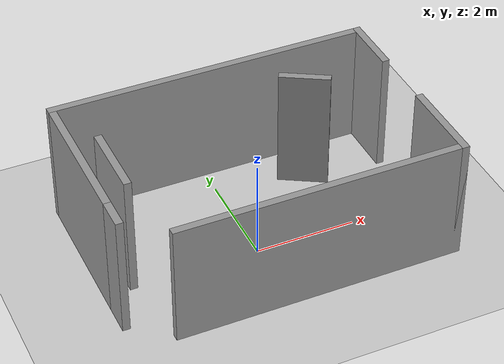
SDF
<sdf version="1.7">
 <world name="default">
  <light name="sun" type="directional">
   <pose>0 0 10 0 0 0</pose>
   <diffuse>0.8 0.8 0.8 1</diffuse>
   <specular>0.2 0.2 0.2 1</specular>
   <attenuation>
    <range>1000</range>
    <constant>0.9</constant>
    <linear>0.01</linear>
    <quadratic>0.001</quadratic>
   </attenuation>
   <direction>-0.5 0.1 -0.9</direction>
   <spot><inner_angle>0</inner_angle><outer_angle>0</outer_angle><falloff>0</falloff></spot>
  </light>
  <model name="ground_plane">
   <static>1</static>
   <link name="link">
    <collision name="collision">
     <geometry><plane><normal>0 0 1</normal><size>100 100</size></plane></geometry>
     <surface>
      <contact><collide_bitmask>65535</collide_bitmask></contact>
      <friction><ode><mu>100</mu><mu2>50</mu2></ode></friction>
     </surface>
    </collision>
    <visual name="visual">
     <cast_shadows>0</cast_shadows>
     <geometry><plane><normal>0 0 1</normal><size>100 100</size></plane></geometry>
     <material>
      <ambient>0.8 0.8 0.8 1</ambient>
      <diffuse>0.8 0.8 0.8 1</diffuse>
      <specular>0.8 0.8 0.8 1</specular>
     </material>
    </visual>
   </link>
  </model>
  <gravity>0 0 -9.8</gravity>
  <magnetic_field>6e-06 2.3e-05 -4.2e-05</magnetic_field>
  <atmosphere type="adiabatic"/>
  <physics type="ode">
   <max_step_size>0.001</max_step_size>
   <real_time_factor>1</real_time_factor>
   <real_time_update_rate>1000</real_time_update_rate>
  </physics>
  <scene><ambient>0.4 0.4 0.4 1</ambient><background>0.7 0.7 0.7 1</background><shadows>1</shadows></scene>
  <audio><device>default</device></audio>
  <spherical_coordinates>
   <surface_model>EARTH_WGS84</surface_model>
   <latitude_deg>0</latitude_deg>
   <longitude_deg>0</longitude_deg>
   <elevation>0</elevation>
   <heading_deg>0</heading_deg>
  </spherical_coordinates>
  <model name="sample">
   <pose>0.195 0.545 0 0 -0 0</pose>
   <link name="Wall_10">
    <collision name="Wall_10_Collision">
     <geometry><box><size>6.5 0.15 2.5</size></box></geometry>
     <pose>0 0 1.25 0 -0 0</pose>
    </collision>
    <visual name="Wall_10_Visual">
     <pose>0 0 1.25 0 -0 0</pose>
     <geometry><box><size>6.5 0.15 2.5</size></box></geometry>
     <material>
      <script><uri>file://media/materials/scripts/gazebo.material</uri><name>Gazebo/Grey</name></script>
      <ambient>1 1 1 1</ambient>
     </material>
     <meta><layer>0</layer></meta>
    </visual>
    <pose>-0.02 2.035 0 0 -0 3.14159</pose>
   </link>
   <link name="Wall_11">
    <collision name="Wall_11_Collision">
     <geometry><box><size>3 0.15 2.5</size></box></geometry>
     <pose>0 0 1.25 0 -0 0</pose>
    </collision>
    <visual name="Wall_11_Visual">
     <pose>0 0 1.25 0 -0 0</pose>
     <geometry><box><size>3 0.15 2.5</size></box></geometry>
     <material>
      <script><uri>file://media/materials/scripts/gazebo.material</uri><name>Gazebo/Grey</name></script>
      <ambient>1 1 1 1</ambient>
     </material>
     <meta><layer>0</layer></meta>
    </visual>
    <pose>-3.195 0.61 0 0 -0 -1.5708</pose>
   </link>
   <link name="Wall_12">
    <collision name="Wall_12_Collision">
     <geometry><box><size>0.75 0.15 2.5</size></box></geometry>
     <pose>0 0 1.25 0 -0 0</pose>
    </collision>
    <visual name="Wall_12_Visual">
     <pose>0 0 1.25 0 -0 0</pose>
     <geometry><box><size>0.75 0.15 2.5</size></box></geometry>
     <material>
      <script><uri>file://media/materials/scripts/gazebo.material</uri><name>Gazebo/Grey</name></script>
      <ambient>1 1 1 1</ambient>
     </material>
     <meta><layer>0</layer></meta>
    </visual>
    <pose>-3.195 -1.115 0 0 -0 -1.5708</pose>
   </link>
   <link name="Wall_14">
    <collision name="Wall_14_Collision">
     <geometry><box><size>1.5 0.15 2.5</size></box></geometry>
     <pose>0 0 1.25 0 -0 0</pose>
    </collision>
    <visual name="Wall_14_Visual">
     <pose>0 0 1.25 0 -0 0</pose>
     <geometry><box><size>1.5 0.15 2.5</size></box></geometry>
     <material>
      <script><uri>file://media/materials/scripts/gazebo.material</uri><name>Gazebo/Grey</name></script>
      <ambient>1 1 1 1</ambient>
     </material>
     <meta><layer>0</layer></meta>
    </visual>
    <pose>-2.685 0.2 0 0 -0 -1.5708</pose>
   </link>
   <link name="Wall_16">
    <collision name="Wall_16_Collision">
     <geometry><box><size>1 0.15 2.5</size></box></geometry>
     <pose>0 0 1.25 0 -0 0</pose>
    </collision>
    <visual name="Wall_16_Visual">
     <pose>0 0 1.25 0 -0 0</pose>
     <geometry><box><size>1 0.15 2.5</size></box></geometry>
     <material>
      <script><uri>file://media/materials/scripts/gazebo.material</uri><name>Gazebo/Grey</name></script>
      <ambient>1 1 1 1</ambient>
     </material>
     <meta><layer>0</layer></meta>
    </visual>
    <pose>1.52306 1.0525 0 0 -0 -0.523599</pose>
   </link>
   <link name="Wall_4">
    <collision name="Wall_4_Collision">
     <geometry><box><size>5.75 0.15 2.5</size></box></geometry>
     <pose>0 0 1.25 0 -0 0</pose>
    </collision>
    <visual name="Wall_4_Visual">
     <pose>0 0 1.25 0 -0 0</pose>
     <geometry><box><size>5.75 0.15 2.5</size></box></geometry>
     <material>
      <script><uri>file://media/materials/scripts/gazebo.material</uri><name>Gazebo/Grey</name></script>
      <ambient>1 1 1 1</ambient>
     </material>
     <meta><layer>0</layer></meta>
    </visual>
    <pose>0.395 -2.035 0 0 -0 0</pose>
   </link>
   <link name="Wall_5">
    <collision name="Wall_5_Collision">
     <geometry><box><size>1.75 0.15 2.5</size></box></geometry>
     <pose>0 0 1.25 0 -0 0</pose>
    </collision>
    <visual name="Wall_5_Visual">
     <pose>0 0 1.25 0 -0 0</pose>
     <geometry><box><size>1.75 0.15 2.5</size></box></geometry>
     <material>
      <script><uri>file://media/materials/scripts/gazebo.material</uri><name>Gazebo/Grey</name></script>
      <ambient>1 1 1 1</ambient>
     </material>
     <meta><layer>0</layer></meta>
    </visual>
    <pose>3.195 -1.235 0 0 -0 1.5708</pose>
   </link>
   <link name="Wall_9">
    <collision name="Wall_9_Collision">
     <geometry><box><size>1.25 0.15 2.5</size></box></geometry>
     <pose>0 0 1.25 0 -0 0</pose>
    </collision>
    <visual name="Wall_9_Visual">
     <pose>0 0 1.25 0 -0 0</pose>
     <geometry><box><size>1.25 0.15 2.5</size></box></geometry>
     <material>
      <script><uri>file://media/materials/scripts/gazebo.material</uri><name>Gazebo/Grey</name></script>
      <ambient>1 1 1 1</ambient>
     </material>
     <meta><layer>0</layer></meta>
    </visual>
    <pose>3.155 1.485 0 0 -0 1.5708</pose>
   </link>
   <static>1</static>
  </model>
 </world>
</sdf>
